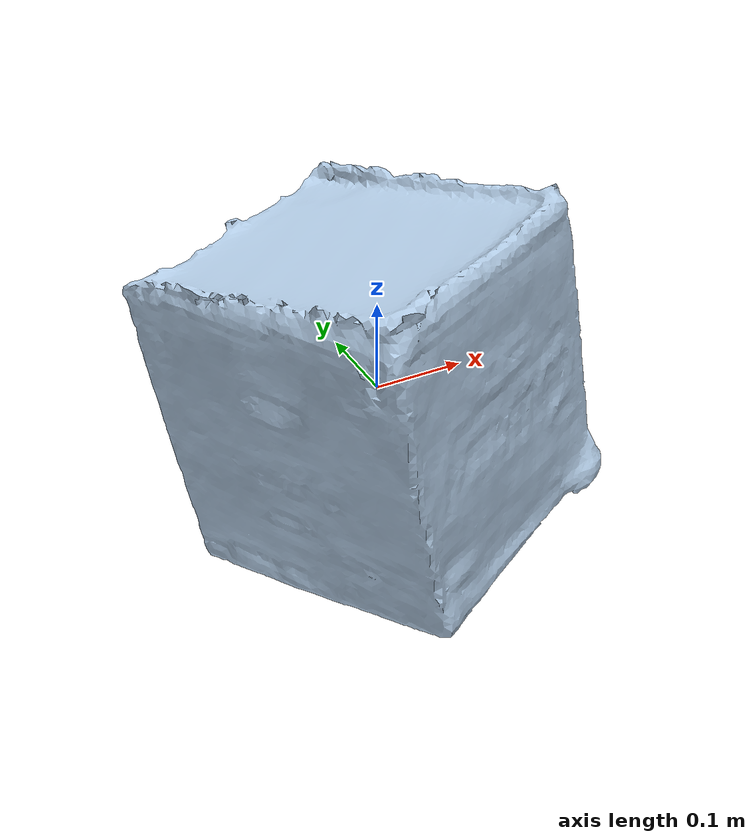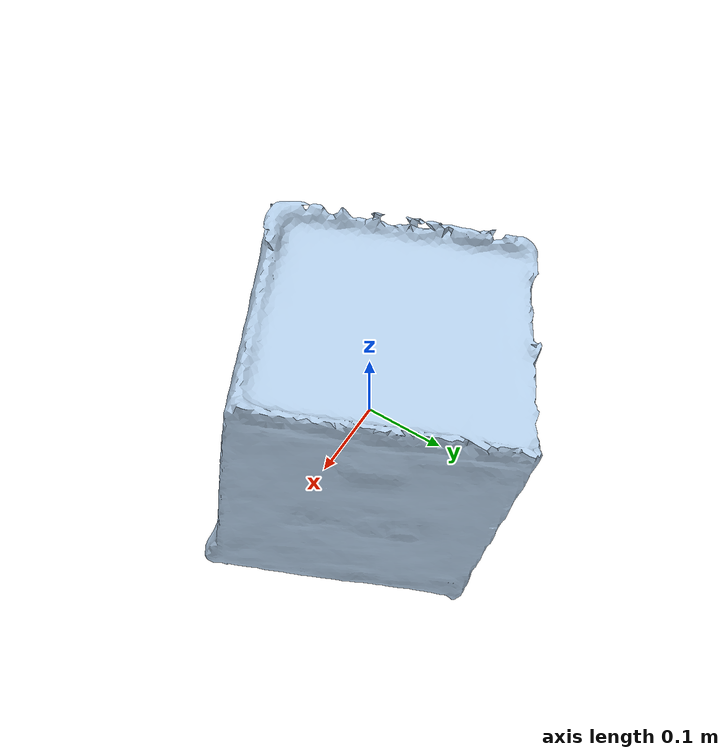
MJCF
<mujoco model="largebox">
  <compiler angle="radian" coordinate="global"/>

  <asset>
    <mesh name="largebox_mesh" file="objects/largebox/largebox.obj" scale="1 1 1"/>
    <material name="largebox_mat" rgba="0.7 0.8 0.9 1"/>
  </asset>

  <default>
    <default class="largebox_phys">
      <geom
        contype="1" conaffinity="1"
        friction="1.2 0.1 0.1"
        solimp="0.99 0.99 0.01"
        solref="0.01 1"
        density="10"
      />
    </default>
  </default>

  <worldbody>
    <body name="largebox" pos="0 0 0.9" quat="1 0 0 0">
      <freejoint name="largebox_free"/>

      <geom class="largebox_phys"
            name="largebox_geom"
            type="mesh" mesh="largebox_mesh"
            material="largebox_mat"/>
    </body>
  </worldbody>
</mujoco>
